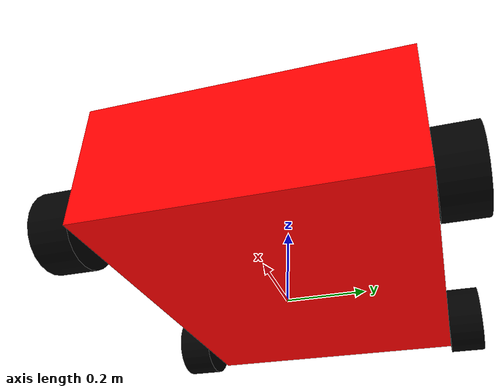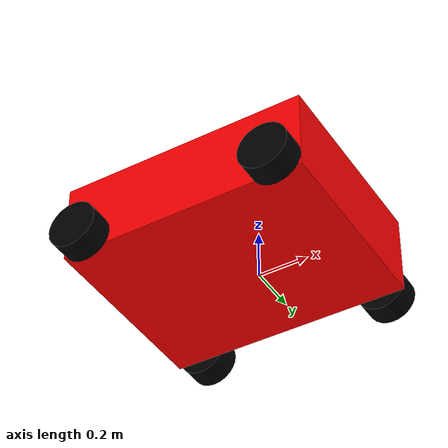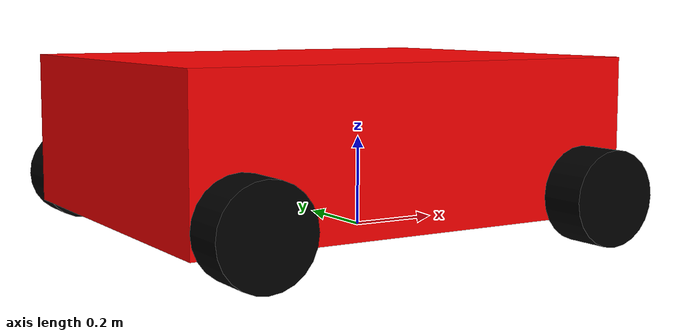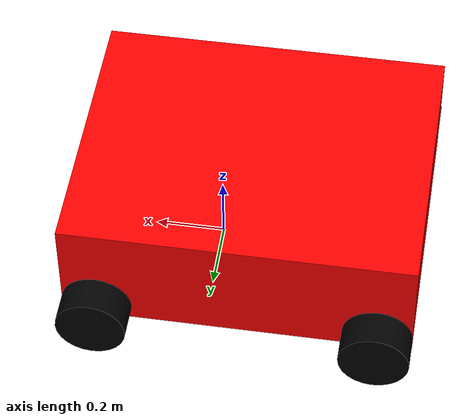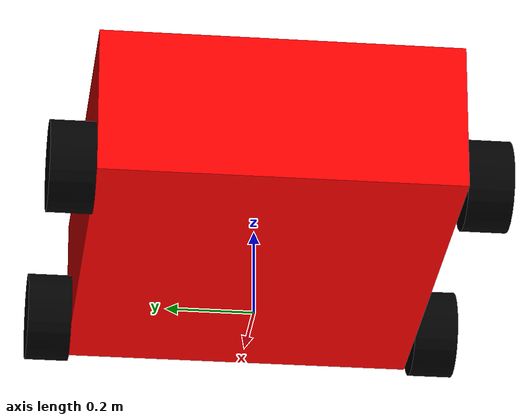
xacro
<?xml version="1.0" ?>
<robot name="turtlebot4" xmlns:xacro="http://ros.org/wiki/xacro">
  <!-- Base create3 model -->
  <xacro:include filename="$(find turtlebot4_description)/urdf/standard/robotcore.xacro"/>
  <xacro:include filename="$(find turtlebot4_description)/urdf/sensors/rplidar.xacro" />

  <!-- Mechanical properties -->
  <xacro:property name="name"                     value="rplidar"/>
  <xacro:property name="parent_link"              value="chassis"/>

  <!-- Turtlebot4 sensor definitions -->

  <joint name="${name}_joint" type="fixed">
    <origin xyz=" 0 0 0.11159999016" />
    <parent link="${parent_link}"/>
    <child link="${name}_link"/>
  </joint>

</robot>

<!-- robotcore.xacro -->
<robot xmlns:xacro="http://www.ros.org/wiki/xacro">

<link name="base_link">

</link>

<!-- Chassis  -->

<joint name="chassis_joint" type="fixed">
    <origin xyz="-0.1 0.0 0.05"/>
    <parent link="base_link"/>
    <child link="chassis"/>
</joint>

<link name="chassis">
    <visual name="chassis">
        <origin xyz="0.0 0.0 0.16666665" rpy="0.0 0.0 0.0"/>
        <geometry>
            <box size="1.0 0.8 0.3333333"/>
        </geometry>
        <material name="red">
            <color rgba="1.0 0.0 0.0 1.0"/>
        </material>
    </visual>
    <collision>
        <origin xyz="0.0 0.0 0.05" rpy="0.0 0.0 0.0"/>
        <geometry>
            <box size="1.0 1.0 0.3333333"/>
        </geometry>
    </collision>
    <inertial>
        <origin xyz="0.0 0.0 0.16666665" rpy="0.0 0.0 0.0"/>
        <mass value="10.0"/>
        <inertia ixx="0.625924" ixy="0" ixz="0" iyy="1.36667" iyz="0" izz="0.92592"/>
    </inertial>
</link>

<!-- Front left wheel -->
<joint name="front_left_wheel_joint" type="continuous">
    <origin xyz="0.4 0.45 0.05" rpy="${pi/2} 0.0 0.0"/>
    <parent link="chassis"/>
    <child link="front_left_wheel"/>
    <axis xyz="0.0 0.0 1.0"/>
</joint>

<link name="front_left_wheel">
    <visual name="front_left_wheel">
        <origin xyz="0.0 0.0 0.0" rpy="0.0 0.0 0.0"/>
        <geometry>
            <cylinder radius="0.1" length="0.1"/>
        </geometry>
        <material name="black">
            <color rgba="0.0 0.0 0.0 1.0"/>
        </material>
    </visual>
    <inertial>
        <origin xyz="0.0 0.0 0.0" rpy="0.0 0.0 0.0"/>
        <mass value="1.0"/>
        <inertia ixx="0.003333333" ixy="0" ixz="0" iyy="0.003333333" iyz="0" izz="0.005"/>
    </inertial>
</link>

<!-- Rear left wheel -->
<joint name="rear_left_wheel_joint" type="continuous">
    <origin xyz="-0.4 0.45 0.05" rpy="${pi/2} 0.0 0.0"/>
    <parent link="chassis"/>
    <child link="rear_left_wheel"/>
    <axis xyz="0.0 0.0 1.0"/>
</joint>

<link name="rear_left_wheel">
    <visual name="rear_left_wheel">
        <origin xyz="0.0 0.0 0.0" rpy="0.0 0.0 0.0"/>
        <geometry>
            <cylinder radius="0.1" length="0.1"/>
        </geometry>
        <material name="black">
            <color rgba="0.0 0.0 0.0 1.0"/>
        </material>
    </visual>
    <inertial>
        <origin xyz="0.0 0.0 0.0" rpy="0.0 0.0 0.0"/>
        <mass value="1.0"/>
        <inertia ixx="0.003333333" ixy="0" ixz="0" iyy="0.003333333" iyz="0" izz="0.005"/>
    </inertial>
</link>

<!-- Front right wheel -->
<joint name="front_right_wheel_joint" type="continuous">
    <origin xyz="0.4 -0.45 0.05" rpy="${pi/2} 0.0 0.0"/>
    <parent link="chassis"/>
    <child link="front_right_wheel"/>
    <axis xyz="0.0 0.0 1.0"/>
</joint>

<link name="front_right_wheel">
    <visual name="front_right_wheel">
        <origin xyz="0.0 0.0 0.0" rpy="0.0 0.0 0.0"/>
        <geometry>
            <cylinder radius="0.1" length="0.1"/>
        </geometry>
        <material name="black">
            <color rgba="0.0 0.0 0.0 1.0"/>
        </material>
    </visual>
    <inertial>
        <origin xyz="0.0 0.0 0.0" rpy="0.0 0.0 0.0"/>
        <mass value="1.0"/>
        <inertia ixx="0.003333333" ixy="0" ixz="0" iyy="0.003333333" iyz="0" izz="0.005"/>
    </inertial>
</link>

<!-- Rear right wheel -->
<joint name="rear_right_wheel_joint" type="continuous">
    <origin xyz="-0.4 -0.45 0.05" rpy="${pi/2} 0.0 0.0"/>
    <parent link="chassis"/>
    <child link="rear_right_wheel"/>
    <axis xyz="0.0 0.0 1.0"/>
</joint>

<link name="rear_right_wheel">
    <visual name="rear_right_wheel">
        <origin xyz="0.0 0.0 0.0" rpy="0.0 0.0 0.0"/>
        <geometry>
            <cylinder radius="0.1" length="0.1"/>
        </geometry>
        <material name="black">
            <color rgba="0.0 0.0 0.0 1.0"/>
        </material>
    </visual>
    <inertial>
        <origin xyz="0.0 0.0 0.0" rpy="0.0 0.0 0.0"/>
        <mass value="1.0"/>
        <inertia ixx="0.003333333" ixy="0" ixz="0" iyy="0.003333333" iyz="0" izz="0.005"/>
    </inertial>
</link>

</robot>

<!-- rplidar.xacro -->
<robot xmlns:xacro="http://ros.org/wiki/xacro">

<xacro:property name="name"                     value="rplidar"/>
<xacro:property name="parent_link"              value="chassis"/>

  <link name="${name}_link">
    <visual>
      <geometry>
         <cylinder radius="0.07" length="0.02"/>
      </geometry>
      <material name="White">
         <color rgba="1.0 1.0 1.0 1.0"/>
      </material>
    </visual>
    <collision>
      <origin xyz="0 0 0" rpy="0 0 1.5708"/>
      <geometry>
         <cylinder radius="0.07" length="0.02"/>
      </geometry>
    </collision>
    <inertial>
        <origin xyz="0.0 0.0 0.0" rpy="0.0 0.0 0.0"/>
        <mass value="1.0"/>
        <inertia ixx="0.013544611" ixy="0" ixz="0" iyy="0.013544611" iyz="0" izz="0.026371628"/>
    </inertial>
  </link>

  <sensor name="lidar_sensor" type="gpu_lidar">
    <topic>scan</topic>
    <update_rate>10</update_rate>
    <always_on>true</always_on>
    <visualize>true</visualize>
    <lidar>
      <scan>
        <horizontal>
          <samples>720</samples>
          <resolution>0.5</resolution>
          <min_angle>-3.14159</min_angle>
          <max_angle>3.14159</max_angle>
        </horizontal>
        <vertical>
          <samples>1</samples>
          <resolution>1</resolution>
          <min_angle>0</min_angle>
          <max_angle>0</max_angle>
        </vertical>
      </scan>
      <range>
        <min>0.15</min>
        <max>12</max>
        <resolution>0.01</resolution>
      </range>
    </lidar>
  </sensor>

</robot>
